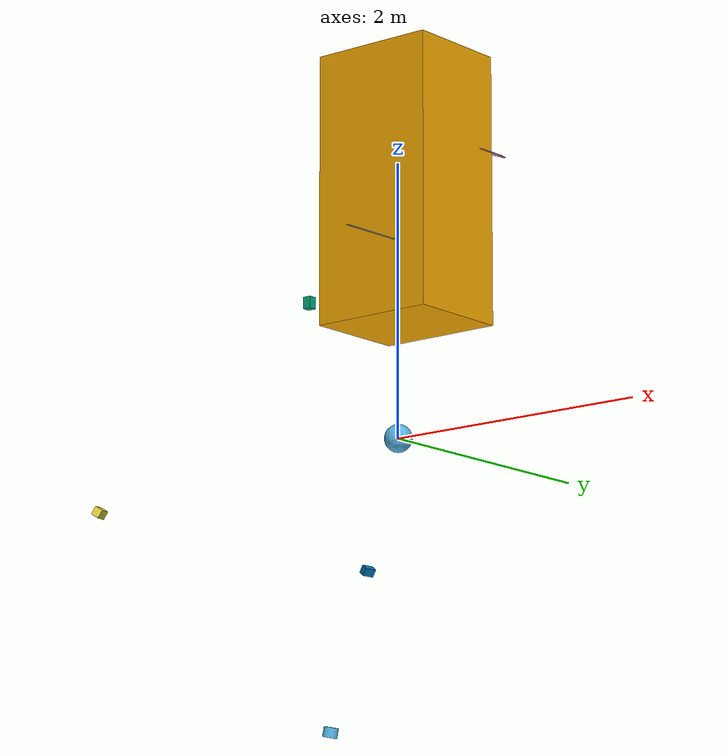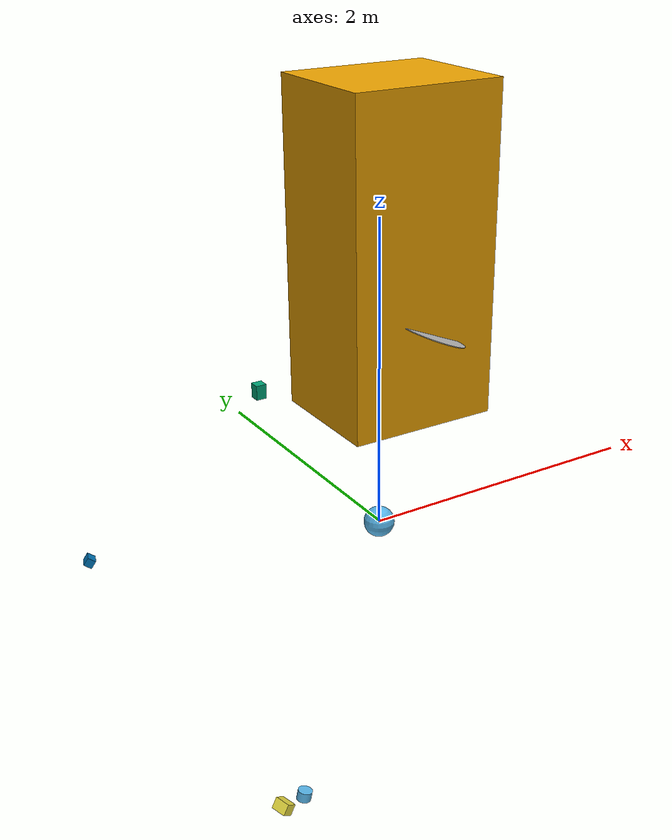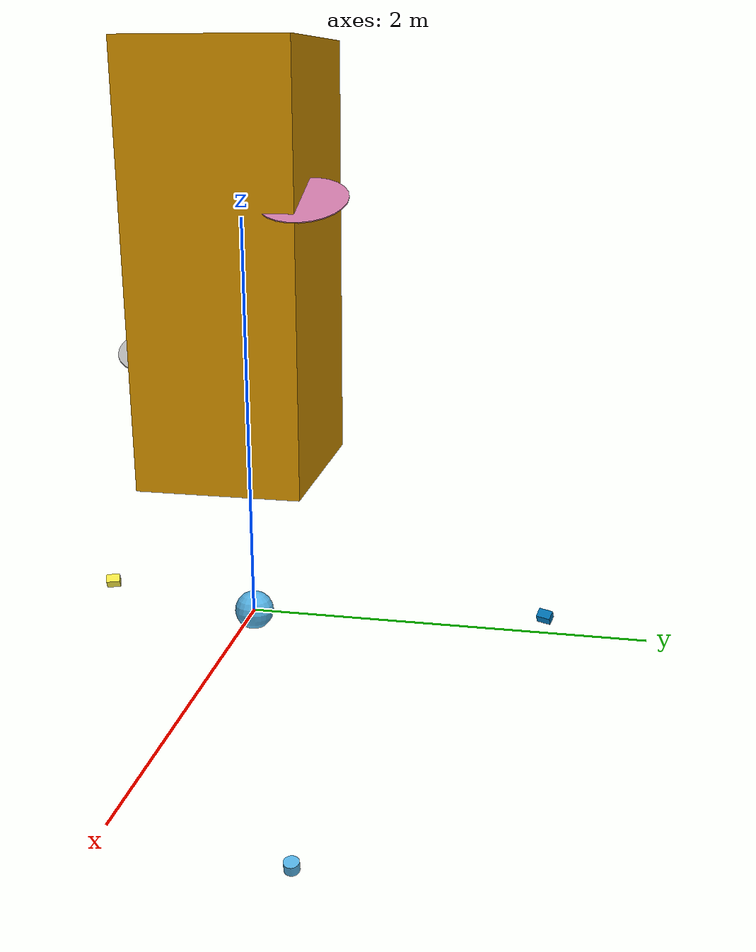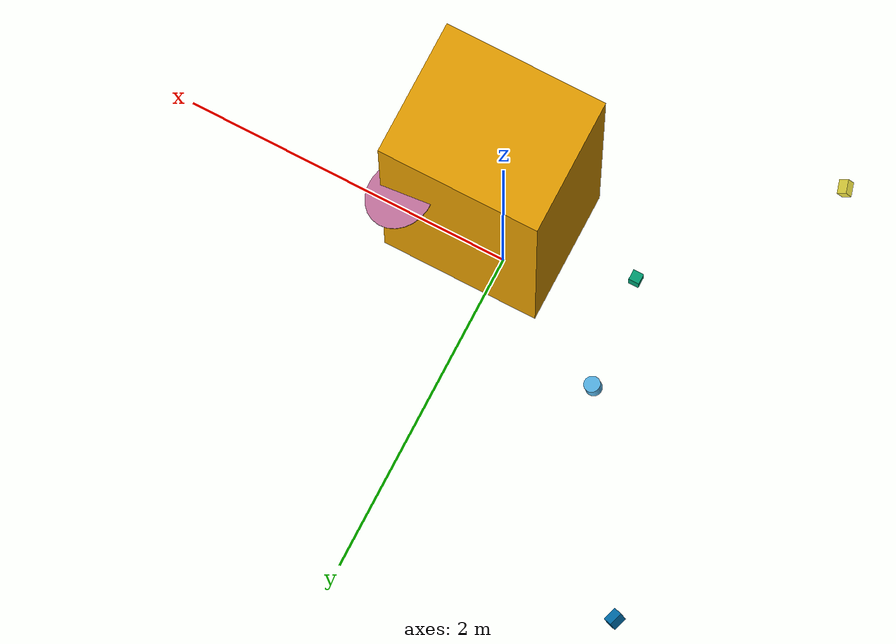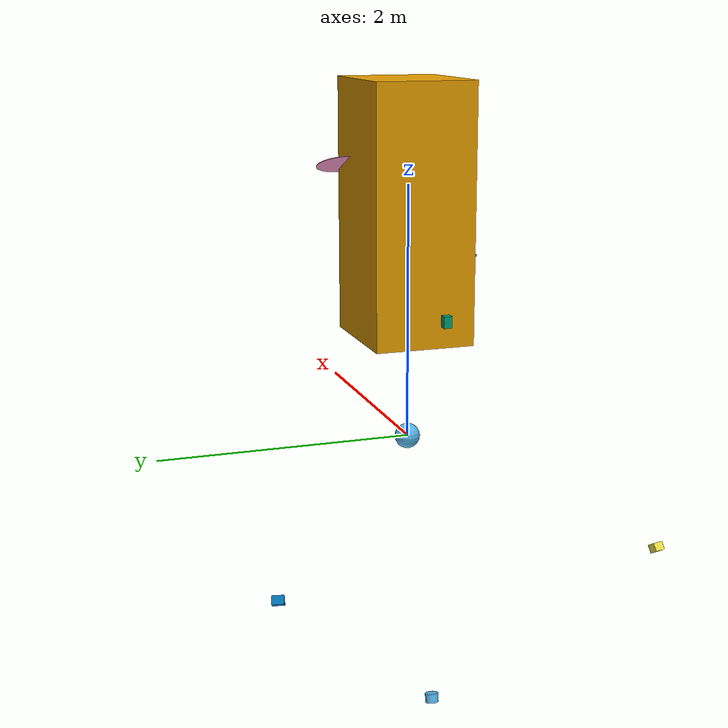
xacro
<?xml version="1.0"?>
<robot xmlns:xacro="http://www.ros.org/wiki/xacro" name="navvis_m6">
<xacro:include filename="$(find lab5)/src/urdf/robot_xacro.xacro" />
<link name="base_link">
</link>
<joint name="base_link_base_joint" type="fixed">
<parent link="base_link" />
<child link="base(parent)" />
<origin xyz="0.07 0 1.792" rpy="0.0 ${pi} 0.0" />
</joint>
<joint name="base_link_imu_joint" type="fixed">
<parent link="base_link" />
<child link="imu" />
<origin xyz="0.0 0.0 0.0" rpy="3.1405788 0.0034281 3.1382064" />
</joint>
<link name="imu">
<visual>
<geometry>
<sphere radius="0.1" />
</geometry>
</visual>
<collision>
<geometry>
<sphere radius="0.1" />
</geometry>
</collision>
</link>
</robot>

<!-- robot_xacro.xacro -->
<robot xmlns:xacro="http://www.ros.org/wiki/xacro" name="my_robot">
	<link name="base(parent)">
	    <visual>
		<origin xyz="0 0 0" rpy="0 0 0"/>
		<geometry>
		  <box size="0.94 0.78 1.98" />
 	      	</geometry>
  	    </visual>
        </link>

	<link name="laser_horiz">
	    <visual>
	 	<origin xyz="0.2325 0.00001 1.9201" rpy="-0.0012 0.1146 -0.0015"/>
		<geometry>
		  <cylinder radius="0.052" length="0.072"/>
 	      	</geometry>
  	    </visual>

            <collision>
             <origin xyz="0.2325 0.00001 1.9201" rpy="-0.0012 0.1146 -0.0015"/>
		<geometry>
		  <cylinder radius="0.052" length="0.072"/>
 	      	</geometry>
            </collision>
        </link>

	<link name="laser_vert_bottom">
	    <visual>
	 	<origin xyz="0.3158 -0.0021 0.5100" rpy="3.1355 -1.3045 0.0025" />
		<geometry>
		  <box size="0.062 0.062 0.087" />
 	      	</geometry>
  	    </visual>

            <collision>
             <origin xyz="0.3158 -0.0021 0.5100" rpy="3.1355 -1.3045 0.0025" />
             <geometry>
		  <box size="0.062 0.062 0.087" />
 	     </geometry>
            </collision>
        </link>

	<link name="laser_vert_top_right">
	    <visual>
	 	<origin xyz="0.2978 -0.1450 1.8451" rpy="-1.1760 0.6313 -1.9377" />
		<geometry>
		  <box size="0.062 0.062 0.087" />
 	      	</geometry>
  	    </visual>

            <collision>
             <origin xyz="0.2978 -0.1450 1.8451" rpy="-1.1760 0.6313 -1.9377" />
             <geometry>
		  <box size="0.062 0.062 0.087" />
 	     </geometry>
            </collision>
        </link>

	<link name="laser_vert_top_left">
	    <visual>
	 	<origin xyz="0.2997 0.1531 1.8443" rpy="1.1780 0.6198 1.9560" />
		<geometry>
		  <box size="0.062 0.062 0.087" />
 	      	</geometry>
  	    </visual>

            <collision>
             <origin xyz="0.2997 0.1531 1.8443" rpy="1.1780 0.6198 1.9560" />
             <geometry>
		  <box size="0.062 0.062 0.087" />
 	     </geometry>
            </collision>
        </link>
	<link name="wheel_center">
	    		<visual>
	 			<origin xyz="-0.1 0.0 0.0" rpy="-1.57079632679 0.4 0.0" />
				<geometry>
				  <cylinder radius="0.2" length="0.005"/>
 	      			</geometry>
  	 		</visual>

            		<collision>
           		  <origin xyz="-0.1 0.0 0.0" rpy="-1.57079632679 0.4 0.0" />
           		  <geometry>
				<cylinder radius="0.2" length="0.005"/>
 	  		  </geometry>
          		</collision>
      		</link>
		<joint name="base_wheel_center_joint" type="fixed">
			<origin xyz="-0.1 0.0 0.0" rpy="-1.57079632679 0.4 0.0" />
			<parent link="base(parent)"/>
			<child link="wheel_center"/>
		</joint>

	<joint name="base_laser_vert_bottom_joint" type="fixed">
		<origin xyz="0.3158 -0.0021 0.5100" rpy="3.1355 -1.3045 0.0025" />
		<parent link="base(parent)"/>
		<child link="laser_vert_bottom"/>
	</joint>
	<joint name="base_laser_vert_top_right_joint" type="fixed">
		<origin xyz="0.2978 -0.1450 1.8451" rpy="-1.1760 0.6313 -1.9377" />
		<parent link="base(parent)"/>
		<child link="laser_vert_top_right"/>
	</joint>
	<joint name="base_laser_vert_top_left_joint" type="fixed">
		<origin xyz="0.2997 0.1531 1.8443" rpy="1.1780 0.6198 1.9560" />
		<parent link="base(parent)"/>
		<child link="laser_vert_top_left"/>
	</joint>
	<joint name="base_laser_horiz_joint" type="fixed">
		<origin xyz="0.2325 0.00001 1.9201" rpy="-0.0012 0.1146 -0.0015"/>
		<parent link="base(parent)"/>
		<child link="laser_horiz"/>
	</joint>
	<xacro:macro name="xacro_name" params="suffix reflect">
		<link name="wheel_${suffix}">
	    		<visual>
	 			<origin xyz="-0.1 ${reflect*0.4} 0.0" rpy="-1.57079632679 0.4 0.0" />
				<geometry>
				  <cylinder radius="0.2" length="0.005"/>
 	      			</geometry>
  	 		</visual>

            		<collision>
           		  <origin xyz="-0.1 ${reflect*0.4} 0.0" rpy="-1.57079632679 0.4 0.0" />
           		  <geometry>
				<cylinder radius="0.2" length="0.005"/>
 	  		  </geometry>
          		</collision>
      		</link>
		<joint name="base_wheel_${suffix}_joint" type="fixed">
			<origin xyz="-0.1 ${reflect*0.4} 0.0" rpy="-1.57079632679 0.4 0.0" />
			<parent link="base(parent)"/>
			<child link="wheel_${suffix}"/>
		</joint>
	</xacro:macro>
	<xacro:xacro_name suffix="left" reflect="1" />
	<xacro:xacro_name suffix="right" reflect="-1" />
</robot>
